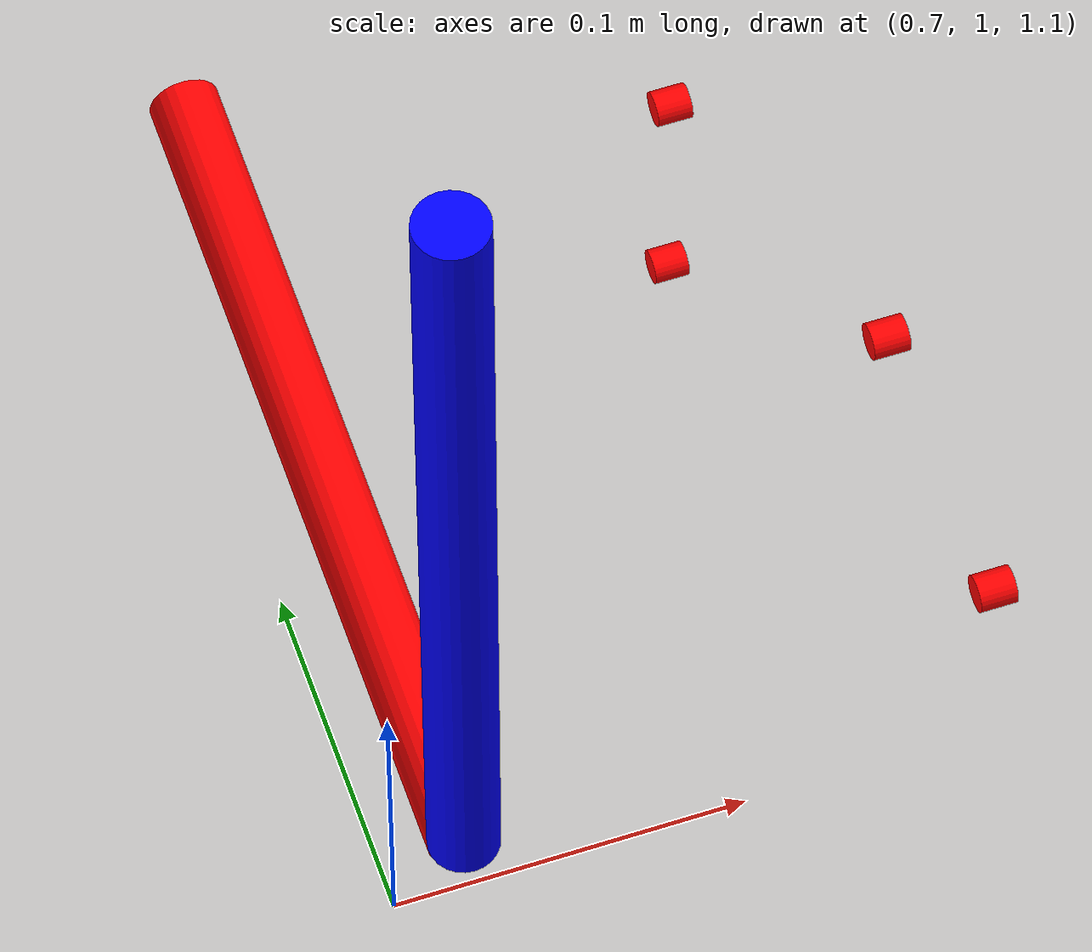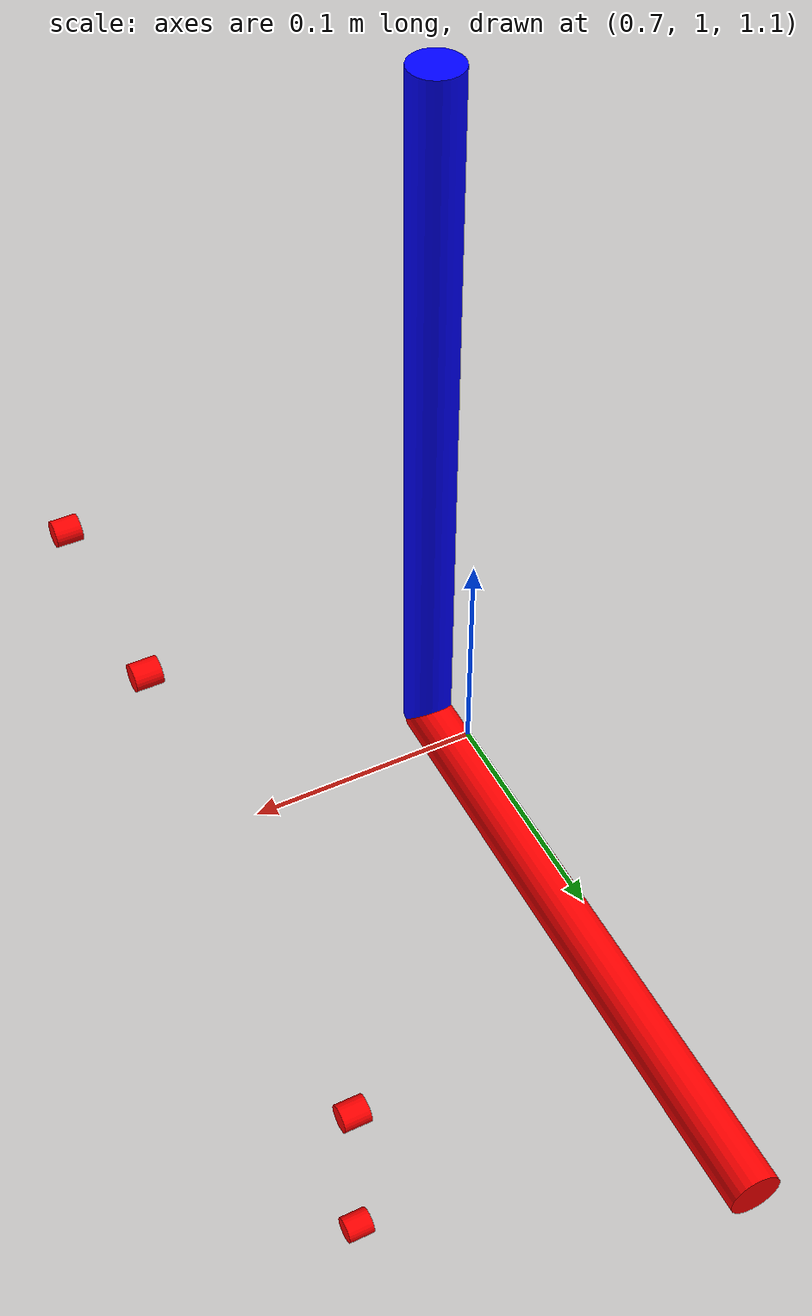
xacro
<?xml version="1.0"?>
<robot name="1_dof_arm" xmlns:xacro="http://www.ros.org/wiki/xacro">

  <!-- Import all Gazebo-customization elements, including Gazebo colors -->
  <xacro:include filename="$(find wearable_robot_description)/urdf/1_dof_arm.gazebo"/>
  <!-- Import Rviz colors -->
  <xacro:include filename="$(find wearable_robot_description)/urdf/materials.xacro"/>

    <link name="world"/>

    <joint name="fixed" type="fixed">
        <parent link="world"/>
        <child link="arm_link"/>
    </joint>

    <link name="arm_link">
        <visual>
            <geometry>
                <cylinder length="0.3" radius="0.01"/>
            </geometry>
            <origin rpy="0 0 1.570796" xyz="0.72 1 1.275"/>
            <material name="blue">
                <color rgba="0 0 1 1"/>
            </material>
        </visual>
        <collision>
            <geometry>
                <cylinder length="0.3" radius="0.01"/>
            </geometry>
            <origin rpy="0 0 1.570796" xyz="0.72 1 1.275"/>
        </collision>
        <inertial>
            <mass value="0.5"/>
            <inertia ixx="1.0" ixy="0.0" ixz="0.0" iyy="1.0" iyz="0.0" izz="1.0"/>
        </inertial>
    </link>

    <joint name="arm_joint" type="revolute">
        <parent link="arm_link"/>
        <child link="forearm_link"/>
        <origin xyz="0.72 1 1.125"/>
        <axis xyz="0 0 0" />
        <limit effort="300" velocity="0.1" lower="-4.1" upper="-1.5"/>
        <dynamics damping="50" friction="1"/>
    </joint>

    <link name="forearm_link">
        <visual>
            <geometry>
                <cylinder length="0.25" radius="0.01"/>
            </geometry>
            <origin rpy="1.570796 0 0" xyz="0 0.125 0"/>
            <material name="red">
                <color rgba="1 0 0 1"/>
            </material>
        </visual>
        <collision>
            <geometry>
                <cylinder length="0.25" radius="0.01"/>
            </geometry>
            <origin rpy="1.570796 0 0" xyz="0 0.125 0"/>
        </collision>
        <inertial>
            <mass value="0.5"/>
            <inertia ixx="1.0" ixy="0.0" ixz="0.0" iyy="1.0" iyz="0.0" izz="1.0"/>
        </inertial>
    </link>

    <joint name="forearm_band_link_fix_to_forearm_link" type="fixed">
      <origin xyz="0.12 0.18 0.05" rpy="0 1.570796 0"/>
      <parent link="forearm_link"/>
      <child link="forearm_band_link"/>
    </joint>

    <link name="forearm_band_link">
      <visual>
        <geometry>
          <cylinder length="0.01" radius="0.005"/>
        </geometry>
        <origin rpy="0 0 0" xyz="0.01 0 0"/>
        <material name="red">
          <color rgba="1 0 0 1"/>
        </material>
      </visual>
      <visual>
        <geometry>
          <cylinder length="0.01" radius="0.005"/>
        </geometry>
        <origin rpy="0 0 0" xyz="0.09 0 0"/>
        <material name="red">
          <color rgba="1 0 0 1"/>
        </material>
      </visual>
      <collision>
        <geometry>
          <cylinder length="0.02" radius="0.005"/>
        </geometry>
        <origin rpy="0 0 0" xyz="0.01 0 0"/>
        <contact_coefficients mu="2.0" kp="2.0" kd="2.0" />
      </collision>
      <collision>
        <geometry>
          <cylinder length="0.02" radius="0.005"/>
        </geometry>
        <origin rpy="0 0 0" xyz="0.09 0 0"/>
        <contact_coefficients mu="2.0" kp="2.0" kd="2.0" />
      </collision>
      <inertial>
        <mass value="0.1"/>
        <inertia ixx="1e-2" iyy="1e-2" izz="1e-2" ixy="0" ixz="0" iyz="0"/>
      </inertial>
    </link>

    <joint name="arm_band_link_fix_to_arm_link" type="fixed">
      <origin xyz="0.85 0.95 1.25" rpy="0 0 1.570796"/>
      <axis xyz="0 0 0" />
      <parent link="arm_link"/>
      <child link="arm_band_link"/>
    </joint>

    <link name="arm_band_link">
      <visual>
        <geometry>
          <cylinder length="0.01" radius="0.005"/>
        </geometry>
        <origin rpy="1.570796 0 0" xyz="0.01 0 0"/>
        <material name="red">
          <color rgba="1 0 0 1"/>
        </material>
      </visual>
      <visual>
        <geometry>
          <cylinder length="0.01" radius="0.005"/>
        </geometry>
        <origin rpy="1.570796 0 0" xyz="0.09 0 0"/>
        <material name="red">
          <color rgba="1 0 0 1"/>
        </material>
      </visual>
      <collision>
        <geometry>
          <cylinder length="0.02" radius="0.005"/>
        </geometry>
        <origin rpy="1.570796 0 0" xyz="0.01 0 0"/>
        <contact_coefficients mu="2.0" kp="2.0" kd="2.0" />
      </collision>
      <collision>
        <geometry>
          <cylinder length="0.02" radius="0.005"/>
        </geometry>
        <origin rpy="1.570796 0 0" xyz="0.09 0 0"/>
        <contact_coefficients mu="2.0" kp="2.0" kd="2.0" />
      </collision>
      <inertial>
        <mass value="0.1"/>
        <inertia ixx="1e-2" iyy="1e-2" izz="1e-2" ixy="0" ixz="0" iyz="0"/>
      </inertial>
    </link>

  <ros2_control name="GazeboSystem" type="system">
    <hardware>
      <plugin>gazebo_ros2_control/GazeboSystem</plugin>
    </hardware>
    <joint name="arm_joint">
      <command_interface name="position">
        <param name="min">1.79</param>
        <param name="max">6.28</param>
      </command_interface>
      <state_interface name="position"/>
      <state_interface name="velocity"/>
    </joint>
  </ros2_control>

</robot>
